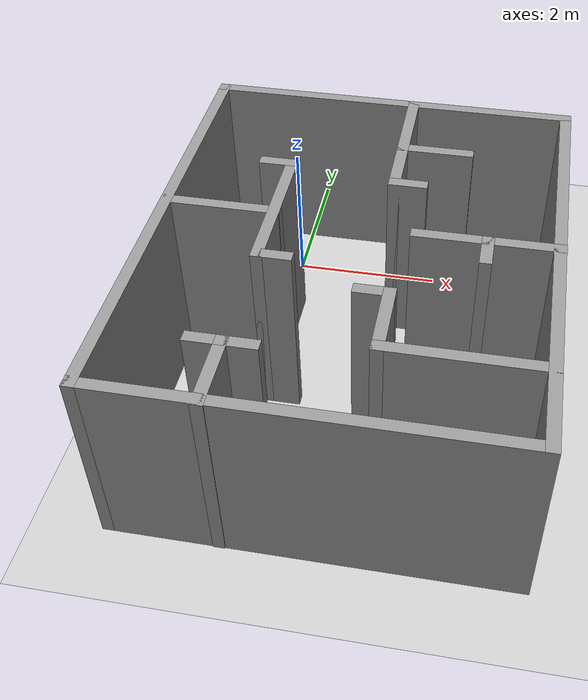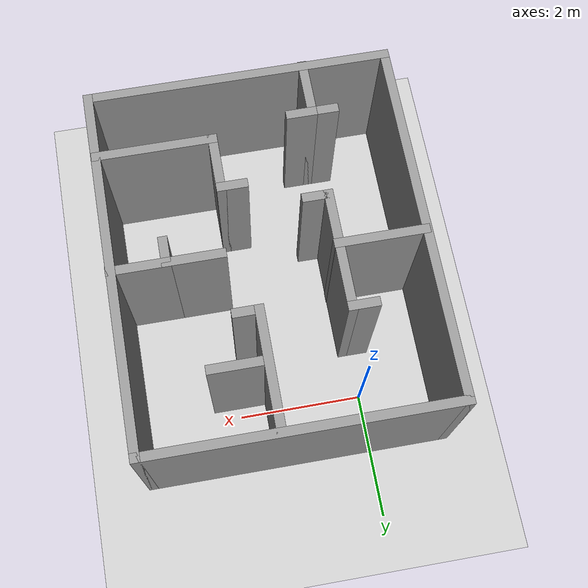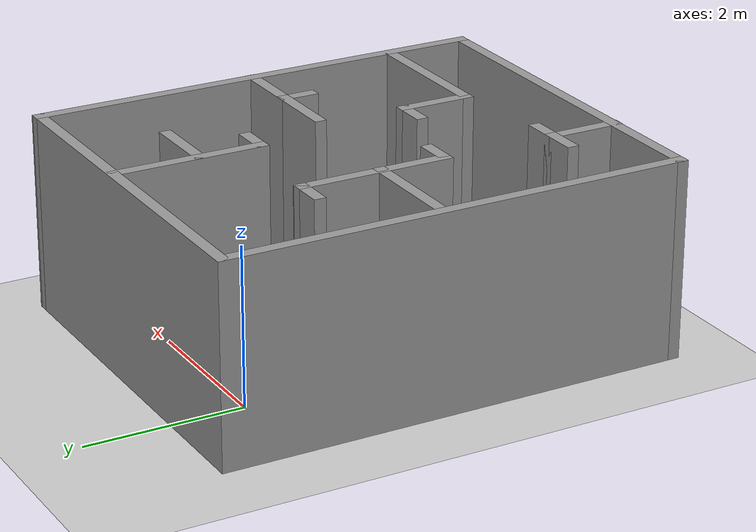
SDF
<sdf version="1.6">
 <world name="default">
  <light name="sun" type="directional">
   <pose>0 0 10 0 -0 0</pose>
   <diffuse>0.8 0.8 0.8 1</diffuse>
   <specular>0.2 0.2 0.2 1</specular>
   <attenuation>
    <range>1000</range>
    <constant>0.9</constant>
    <linear>0.01</linear>
    <quadratic>0.001</quadratic>
   </attenuation>
   <direction>-0.5 0.1 -0.9</direction>
  </light>
  <model name="ground_plane">
   <static>1</static>
   <link name="link">
    <collision name="collision">
     <geometry><plane><normal>0 0 1</normal><size>100 100</size></plane></geometry>
     <surface><friction><ode><mu>100</mu><mu2>50</mu2></ode></friction></surface>
    </collision>
    <visual name="visual">
     <cast_shadows>0</cast_shadows>
     <geometry><plane><normal>0 0 1</normal><size>100 100</size></plane></geometry>
     <material>
      <script><uri>file://media/materials/scripts/gazebo.material</uri><name>Gazebo/Grey</name></script>
     </material>
    </visual>
   </link>
  </model>
  <gravity>0 0 -9.8</gravity>
  <magnetic_field>6e-06 2.3e-05 -4.2e-05</magnetic_field>
  <atmosphere type="adiabatic"/>
  <physics name="default_physics" default="0" type="ode">
   <max_step_size>0.001</max_step_size>
   <real_time_factor>1</real_time_factor>
   <real_time_update_rate>1000</real_time_update_rate>
  </physics>
  <scene><ambient>0.4 0.4 0.4 1</ambient><background>0.7 0.7 0.7 1</background><shadows>1</shadows></scene>
  <spherical_coordinates>
   <surface_model>EARTH_WGS84</surface_model>
   <latitude_deg>0</latitude_deg>
   <longitude_deg>0</longitude_deg>
   <elevation>0</elevation>
   <heading_deg>0</heading_deg>
  </spherical_coordinates>
  <model name="building5_0">
   <pose>1.19032 -2.0728 0 0 -0 0</pose>
   <link name="Wall_0">
    <collision name="Wall_0_Collision">
     <geometry><box><size>5 0.15 2.5</size></box></geometry>
     <pose>0 0 1.25 0 -0 0</pose>
    </collision>
    <visual name="Wall_0_Visual">
     <pose>0 0 1.25 0 -0 0</pose>
     <geometry><box><size>5 0.15 2.5</size></box></geometry>
     <material>
      <script><uri>file://media/materials/scripts/gazebo.material</uri><name>Gazebo/Grey</name></script>
      <ambient>1 1 1 1</ambient>
     </material>
     <meta><layer>0</layer></meta>
    </visual>
    <pose>-0.002609 2.93 0 0 -0 0</pose>
   </link>
   <link name="Wall_1">
    <collision name="Wall_1_Collision">
     <geometry><box><size>6 0.15 2.5</size></box></geometry>
     <pose>0 0 1.25 0 -0 0</pose>
    </collision>
    <visual name="Wall_1_Visual">
     <pose>0 0 1.25 0 -0 0</pose>
     <geometry><box><size>6 0.15 2.5</size></box></geometry>
     <material>
      <script><uri>file://media/materials/scripts/gazebo.material</uri><name>Gazebo/Grey</name></script>
      <ambient>1 1 1 1</ambient>
     </material>
     <meta><layer>0</layer></meta>
    </visual>
    <pose>2.42239 0.005 0 0 0 -1.5708</pose>
   </link>
   <link name="Wall_11">
    <collision name="Wall_11_Collision">
     <geometry><box><size>1 0.15 2.5</size></box></geometry>
     <pose>0 0 1.25 0 -0 0</pose>
    </collision>
    <visual name="Wall_11_Visual">
     <pose>0 0 1.25 0 -0 0</pose>
     <geometry><box><size>1 0.15 2.5</size></box></geometry>
     <material>
      <script><uri>file://media/materials/scripts/gazebo.material</uri><name>Gazebo/Grey</name></script>
      <ambient>1 1 1 1</ambient>
     </material>
     <meta><layer>0</layer></meta>
    </visual>
    <pose>-1.07761 -2.505 0 0 -0 1.5708</pose>
   </link>
   <link name="Wall_2">
    <collision name="Wall_2_Collision">
     <geometry><box><size>5 0.15 2.5</size></box></geometry>
     <pose>0 0 1.25 0 -0 0</pose>
    </collision>
    <visual name="Wall_2_Visual">
     <pose>0 0 1.25 0 -0 0</pose>
     <geometry><box><size>5 0.15 2.5</size></box></geometry>
     <material>
      <script><uri>file://media/materials/scripts/gazebo.material</uri><name>Gazebo/Grey</name></script>
      <ambient>1 1 1 1</ambient>
     </material>
     <meta><layer>0</layer></meta>
    </visual>
    <pose>-0.002609 -2.92 0 0 -0 3.14159</pose>
   </link>
   <link name="Wall_3">
    <collision name="Wall_3_Collision">
     <geometry><box><size>6 0.15 2.5</size></box></geometry>
     <pose>0 0 1.25 0 -0 0</pose>
    </collision>
    <visual name="Wall_3_Visual">
     <pose>0 0 1.25 0 -0 0</pose>
     <geometry><box><size>6 0.15 2.5</size></box></geometry>
     <material>
      <script><uri>file://media/materials/scripts/gazebo.material</uri><name>Gazebo/Grey</name></script>
      <ambient>1 1 1 1</ambient>
     </material>
     <meta><layer>0</layer></meta>
    </visual>
    <pose>-2.42761 0.005 0 0 -0 1.5708</pose>
   </link>
   <link name="Wall_41">
    <collision name="Wall_41_Collision">
     <geometry><box><size>1 0.15 2.5</size></box></geometry>
     <pose>0 0 1.25 0 -0 0</pose>
    </collision>
    <visual name="Wall_41_Visual">
     <pose>0 0 1.25 0 -0 0</pose>
     <geometry><box><size>1 0.15 2.5</size></box></geometry>
     <material>
      <script><uri>file://media/materials/scripts/gazebo.material</uri><name>Gazebo/Grey</name></script>
      <ambient>1 1 1 1</ambient>
     </material>
     <meta><layer>0</layer></meta>
    </visual>
    <pose>2.00261 0.078696 0 0 -0 3.14159</pose>
   </link>
   <link name="Wall_43">
    <collision name="Wall_43_Collision">
     <geometry><box><size>2 0.15 2.5</size></box></geometry>
     <pose>0 0 1.25 0 -0 0</pose>
    </collision>
    <visual name="Wall_43_Visual">
     <pose>0 0 1.25 0 -0 0</pose>
     <geometry><box><size>2 0.15 2.5</size></box></geometry>
     <material>
      <script><uri>file://media/materials/scripts/gazebo.material</uri><name>Gazebo/Grey</name></script>
      <ambient>1 1 1 1</ambient>
     </material>
     <meta><layer>0</layer></meta>
    </visual>
    <pose>0.314565 1.97978 0 0 0 -1.5708</pose>
   </link>
   <link name="Wall_46">
    <collision name="Wall_46_Collision">
     <geometry><box><size>1 0.15 2.5</size></box></geometry>
     <pose>0 0 1.25 0 -0 0</pose>
    </collision>
    <visual name="Wall_46_Visual">
     <pose>0 0 1.25 0 -0 0</pose>
     <geometry><box><size>1 0.15 2.5</size></box></geometry>
     <material>
      <script><uri>file://media/materials/scripts/gazebo.material</uri><name>Gazebo/Grey</name></script>
      <ambient>1 1 1 1</ambient>
     </material>
     <meta><layer>0</layer></meta>
    </visual>
    <pose>0.748261 1.84391 0 0 -0 0</pose>
   </link>
   <link name="Wall_48">
    <collision name="Wall_48_Collision">
     <geometry><box><size>1.5 0.15 2.5</size></box></geometry>
     <pose>0 0 1.25 0 -0 0</pose>
    </collision>
    <visual name="Wall_48_Visual">
     <pose>0 0 1.25 0 -0 0</pose>
     <geometry><box><size>1.5 0.15 2.5</size></box></geometry>
     <material>
      <script><uri>file://media/materials/scripts/gazebo.material</uri><name>Gazebo/Grey</name></script>
      <ambient>1 1 1 1</ambient>
     </material>
     <meta><layer>0</layer></meta>
    </visual>
    <pose>-1.72565 0.217826 0 0 -0 3.14159</pose>
   </link>
   <link name="Wall_50">
    <collision name="Wall_50_Collision">
     <geometry><box><size>0.5 0.15 2.5</size></box></geometry>
     <pose>0 0 1.25 0 -0 0</pose>
    </collision>
    <visual name="Wall_50_Visual">
     <pose>0 0 1.25 0 -0 0</pose>
     <geometry><box><size>0.5 0.15 2.5</size></box></geometry>
     <material>
      <script><uri>file://media/materials/scripts/gazebo.material</uri><name>Gazebo/Grey</name></script>
      <ambient>1 1 1 1</ambient>
     </material>
     <meta><layer>0</layer></meta>
    </visual>
    <pose>-0.882608 -0.61 0 0 -0 0</pose>
   </link>
   <link name="Wall_52">
    <collision name="Wall_52_Collision">
     <geometry><box><size>0.5 0.15 2.5</size></box></geometry>
     <pose>0 0 1.25 0 -0 0</pose>
    </collision>
    <visual name="Wall_52_Visual">
     <pose>0 0 1.25 0 -0 0</pose>
     <geometry><box><size>0.5 0.15 2.5</size></box></geometry>
     <material>
      <script><uri>file://media/materials/scripts/gazebo.material</uri><name>Gazebo/Grey</name></script>
      <ambient>1 1 1 1</ambient>
     </material>
     <meta><layer>0</layer></meta>
    </visual>
    <pose>0.489565 1.05478 0 0 -0 0</pose>
   </link>
   <link name="Wall_54">
    <collision name="Wall_54_Collision">
     <geometry><box><size>0.5 0.15 2.5</size></box></geometry>
     <pose>0 0 1.25 0 -0 0</pose>
    </collision>
    <visual name="Wall_54_Visual">
     <pose>0 0 1.25 0 -0 0</pose>
     <geometry><box><size>0.5 0.15 2.5</size></box></geometry>
     <material>
      <script><uri>file://media/materials/scripts/gazebo.material</uri><name>Gazebo/Grey</name></script>
      <ambient>1 1 1 1</ambient>
     </material>
     <meta><layer>0</layer></meta>
    </visual>
    <pose>-1.23261 1.24 0 0 -0 3.14159</pose>
   </link>
   <link name="Wall_56">
    <collision name="Wall_56_Collision">
     <geometry><box><size>0.5 0.15 2.5</size></box></geometry>
     <pose>0 0 1.25 0 -0 0</pose>
    </collision>
    <visual name="Wall_56_Visual">
     <pose>0 0 1.25 0 -0 0</pose>
     <geometry><box><size>0.5 0.15 2.5</size></box></geometry>
     <material>
      <script><uri>file://media/materials/scripts/gazebo.material</uri><name>Gazebo/Grey</name></script>
      <ambient>1 1 1 1</ambient>
     </material>
     <meta><layer>0</layer></meta>
    </visual>
    <pose>1.57761 -0.096304 0 0 0 -1.5708</pose>
   </link>
   <link name="Wall_58">
    <collision name="Wall_58_Collision">
     <geometry><box><size>0.5 0.15 2.5</size></box></geometry>
     <pose>0 0 1.25 0 -0 0</pose>
    </collision>
    <visual name="Wall_58_Visual">
     <pose>0 0 1.25 0 -0 0</pose>
     <geometry><box><size>0.5 0.15 2.5</size></box></geometry>
     <material>
      <script><uri>file://media/materials/scripts/gazebo.material</uri><name>Gazebo/Grey</name></script>
      <ambient>1 1 1 1</ambient>
     </material>
     <meta><layer>0</layer></meta>
    </visual>
    <pose>-1.25261 -2.08 0 0 -0 3.14159</pose>
   </link>
   <link name="Wall_6">
    <collision name="Wall_6_Collision">
     <geometry><box><size>2 0.15 2.5</size></box></geometry>
     <pose>0 0 1.25 0 -0 0</pose>
    </collision>
    <visual name="Wall_6_Visual">
     <pose>0 0 1.25 0 -0 0</pose>
     <geometry><box><size>2 0.15 2.5</size></box></geometry>
     <material>
      <script><uri>file://media/materials/scripts/gazebo.material</uri><name>Gazebo/Grey</name></script>
      <ambient>1 1 1 1</ambient>
     </material>
     <meta><layer>0</layer></meta>
    </visual>
    <pose>-1.05761 0.315 0 0 0 -1.5708</pose>
   </link>
   <link name="Wall_60">
    <collision name="Wall_60_Collision">
     <geometry><box><size>2 0.15 2.5</size></box></geometry>
     <pose>0 0 1.25 0 -0 0</pose>
    </collision>
    <visual name="Wall_60_Visual">
     <pose>0 0 1.25 0 -0 0</pose>
     <geometry><box><size>2 0.15 2.5</size></box></geometry>
     <material>
      <script><uri>file://media/materials/scripts/gazebo.material</uri><name>Gazebo/Grey</name></script>
      <ambient>1 1 1 1</ambient>
     </material>
     <meta><layer>0</layer></meta>
    </visual>
    <pose>1.49066 -1.86763 0 0 -0 3.14159</pose>
   </link>
   <link name="Wall_61">
    <collision name="Wall_61_Collision">
     <geometry><box><size>1 0.15 2.5</size></box></geometry>
     <pose>0 0 1.25 0 -0 0</pose>
    </collision>
    <visual name="Wall_61_Visual">
     <pose>0 0 1.25 0 -0 0</pose>
     <geometry><box><size>1 0.15 2.5</size></box></geometry>
     <material>
      <script><uri>file://media/materials/scripts/gazebo.material</uri><name>Gazebo/Grey</name></script>
      <ambient>1 1 1 1</ambient>
     </material>
     <meta><layer>0</layer></meta>
    </visual>
    <pose>0.565661 -1.44263 0 0 -0 1.5708</pose>
   </link>
   <link name="Wall_62">
    <collision name="Wall_62_Collision">
     <geometry><box><size>0.5 0.15 2.5</size></box></geometry>
     <pose>0 0 1.25 0 -0 0</pose>
    </collision>
    <visual name="Wall_62_Visual">
     <pose>0 0 1.25 0 -0 0</pose>
     <geometry><box><size>0.5 0.15 2.5</size></box></geometry>
     <material>
      <script><uri>file://media/materials/scripts/gazebo.material</uri><name>Gazebo/Grey</name></script>
      <ambient>1 1 1 1</ambient>
     </material>
     <meta><layer>0</layer></meta>
    </visual>
    <pose>0.390661 -1.01763 0 0 -0 3.14159</pose>
   </link>
   <link name="Wall_67">
    <collision name="Wall_67_Collision">
     <geometry><box><size>1 0.15 2.5</size></box></geometry>
     <pose>0 0 1.25 0 -0 0</pose>
    </collision>
    <visual name="Wall_67_Visual">
     <pose>0 0 1.25 0 -0 0</pose>
     <geometry><box><size>1 0.15 2.5</size></box></geometry>
     <material>
      <script><uri>file://media/materials/scripts/gazebo.material</uri><name>Gazebo/Grey</name></script>
      <ambient>1 1 1 1</ambient>
     </material>
     <meta><layer>0</layer></meta>
    </visual>
    <pose>1.15261 0.078696 0 0 -0 3.14159</pose>
   </link>
   <link name="Wall_69">
    <collision name="Wall_69_Collision">
     <geometry><box><size>0.5 0.15 2.5</size></box></geometry>
     <pose>0 0 1.25 0 -0 0</pose>
    </collision>
    <visual name="Wall_69_Visual">
     <pose>0 0 1.25 0 -0 0</pose>
     <geometry><box><size>0.5 0.15 2.5</size></box></geometry>
     <material>
      <script><uri>file://media/materials/scripts/gazebo.material</uri><name>Gazebo/Grey</name></script>
      <ambient>1 1 1 1</ambient>
     </material>
     <meta><layer>0</layer></meta>
    </visual>
    <pose>-0.902608 -2.08 0 0 -0 0</pose>
   </link>
   <static>1</static>
  </model>
 </world>
</sdf>
